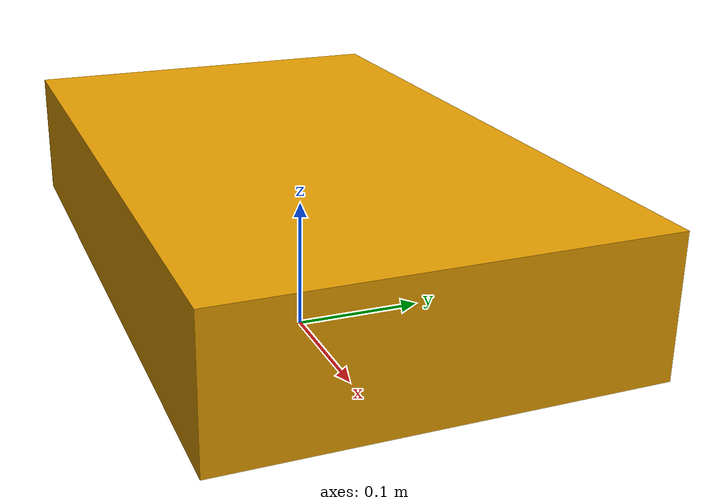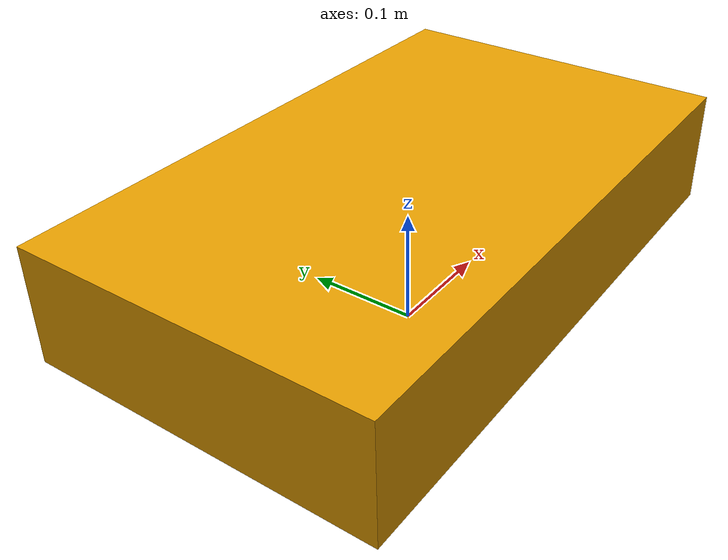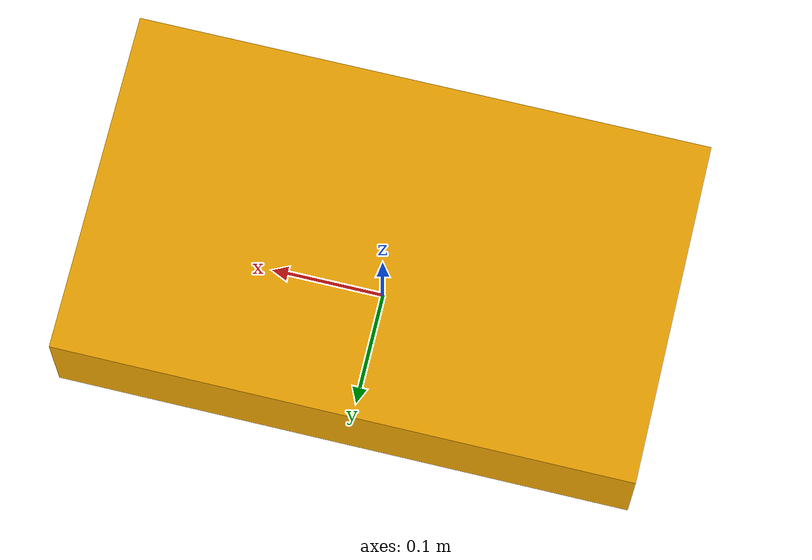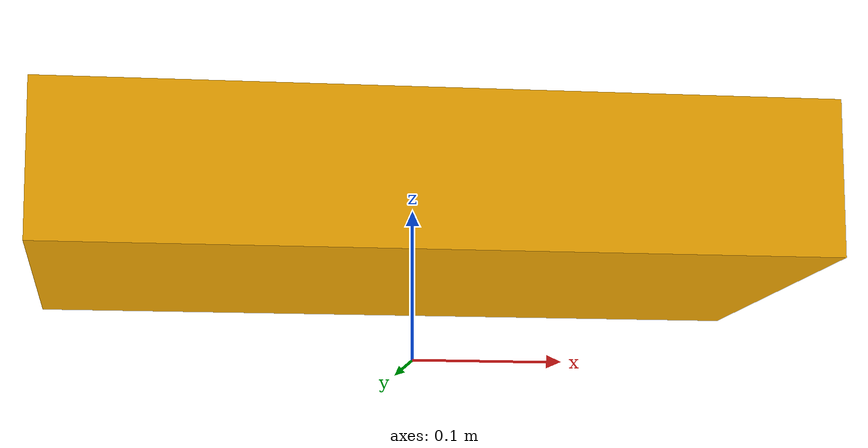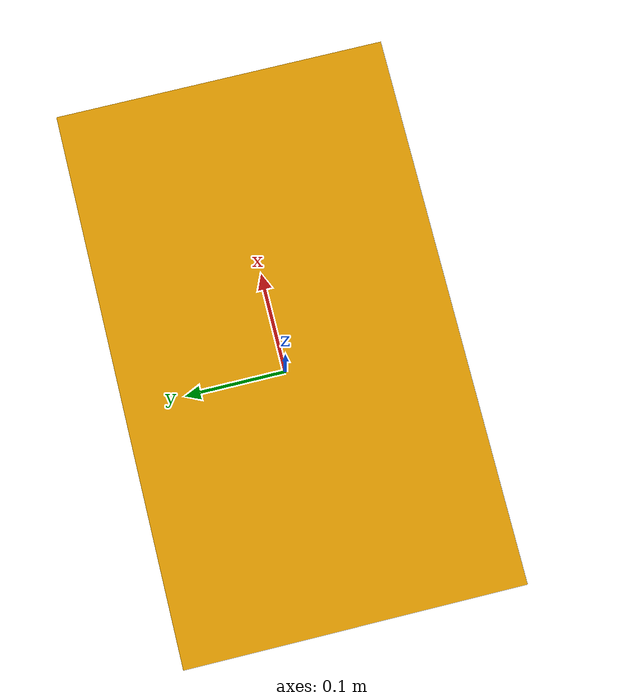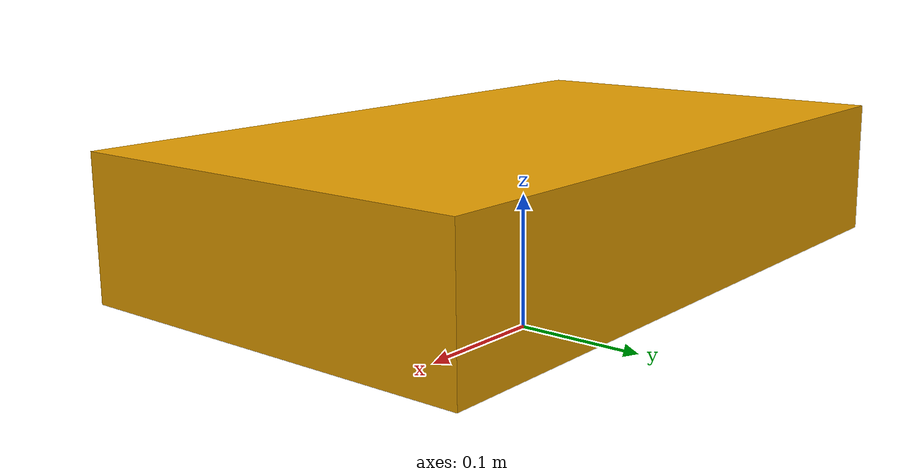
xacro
<?xml version="1.0"?>
<robot xmlns:xacro="http://www.ros.org/wiki/xacro" name="odom_base">
  <!-- Define constants -->
  <xacro:property name="base_length" value="0.5" />
  <xacro:property name="base_width" value="0.3" />
  <xacro:property name="odom_height" value="0.1" />

  <!-- Define base link -->
  <link name="base_link">
    <visual>
      <geometry>
        <box size="${base_length} ${base_width} ${odom_height}" />
      </geometry>
    </visual>
  </link>

  <!-- Define odom frame -->
  <joint name="odom_joint" type="fixed">
    <parent link="odom" />
    <child link="base_link" />
    <origin xyz="0 0 ${odom_height}" />
  </joint>
  <link name="odom" />

</robot>
